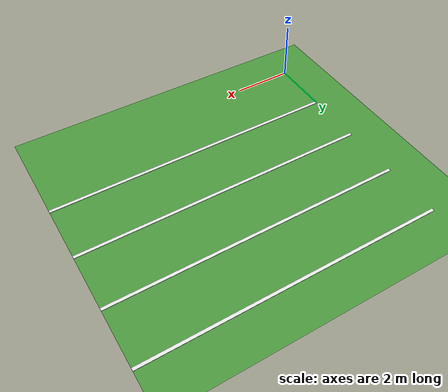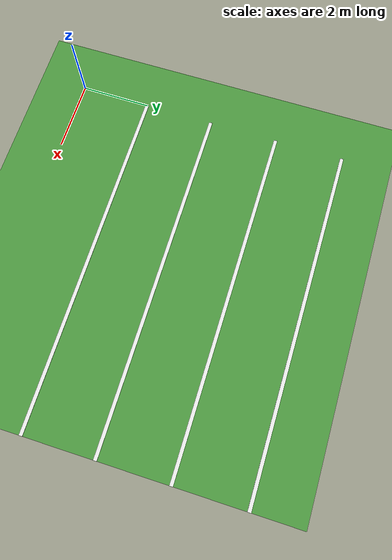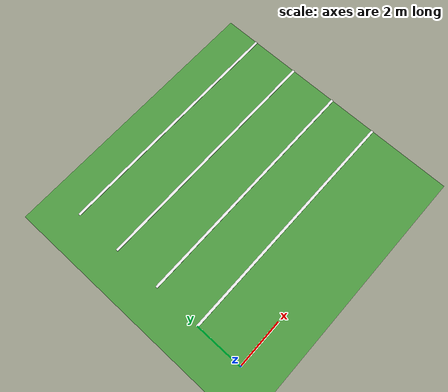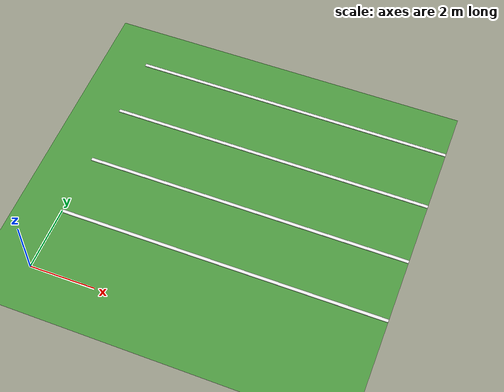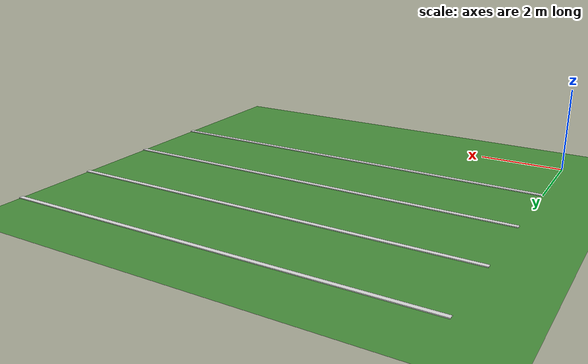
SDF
<?xml version="1.0" ?>
<sdf version="1.5">
  <world name="agricultural_field">
    <physics type="ode">
      <max_step_size>0.015</max_step_size>
      <real_time_factor>1.0</real_time_factor>
      <real_time_update_rate>30</real_time_update_rate>
      <ode>
        <solver>
          <type>quick</type>
        </solver>
      </ode>
    </physics>

    <!-- A global light source -->
    <include>
      <uri>model://sun</uri>
    </include>

    <!-- A ground plane -->
    <include>
      <uri>model://ground_plane</uri>
    </include>

    <!-- Agricultural terrain - a simple flat field -->
    <model name="agricultural_field">
      <static>true</static>
      <link name="field_link">
        <visual name="field_visual">
          <geometry>
            <plane>
              <normal>0 0 1</normal>
              <size>20 20</size>
            </plane>
          </geometry>
          <material>
            <script>
              <uri>file://media/materials/scripts/gazebo.material</uri>
              <name>Gazebo/Grass</name>
            </script>
          </material>
        </visual>
      </link>
    </model>

    <!-- Row markers for agricultural pattern -->
    <model name="row_markers">
      <static>true</static>
      <link name="row_marker_1">
        <visual name="row_visual_1">
          <pose>5 2 0.01 0 0 0</pose>
          <geometry>
            <box>
              <size>10 0.1 0.02</size>
            </box>
          </geometry>
          <material>
            <script>
              <uri>file://media/materials/scripts/gazebo.material</uri>
              <name>Gazebo/White</name>
            </script>
          </material>
        </visual>
      </link>
      <link name="row_marker_2">
        <visual name="row_visual_2">
          <pose>5 4 0.01 0 0 0</pose>
          <geometry>
            <box>
              <size>10 0.1 0.02</size>
            </box>
          </geometry>
          <material>
            <script>
              <uri>file://media/materials/scripts/gazebo.material</uri>
              <name>Gazebo/White</name>
            </script>
          </material>
        </visual>
      </link>
      <link name="row_marker_3">
        <visual name="row_visual_3">
          <pose>5 6 0.01 0 0 0</pose>
          <geometry>
            <box>
              <size>10 0.1 0.02</size>
            </box>
          </geometry>
          <material>
            <script>
              <uri>file://media/materials/scripts/gazebo.material</uri>
              <name>Gazebo/White</name>
            </script>
          </material>
        </visual>
      </link>
      <link name="row_marker_4">
        <visual name="row_visual_4">
          <pose>5 8 0.01 0 0 0</pose>
          <geometry>
            <box>
              <size>10 0.1 0.02</size>
            </box>
          </geometry>
          <material>
            <script>
              <uri>file://media/materials/scripts/gazebo.material</uri>
              <name>Gazebo/White</name>
            </script>
          </material>
        </visual>
      </link>
    </model>
  </world>
</sdf>
